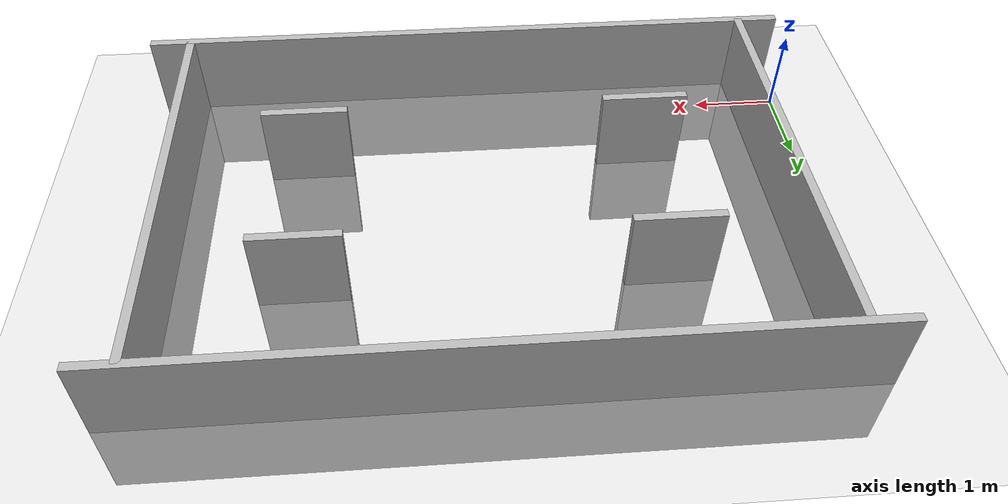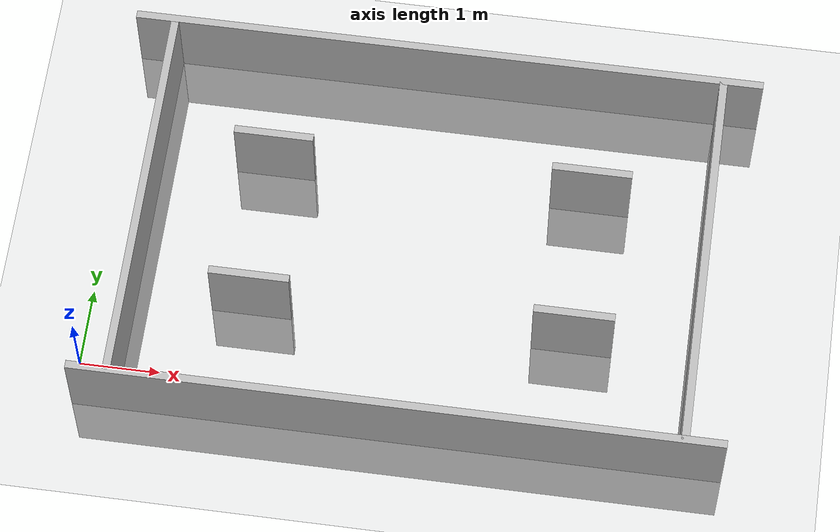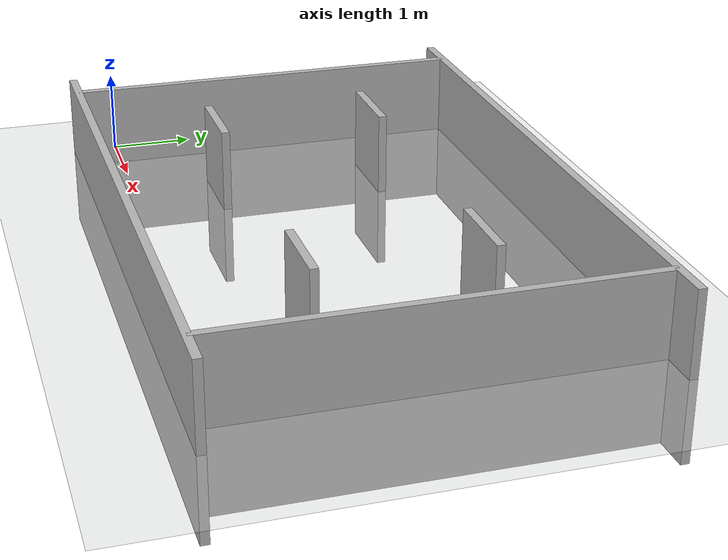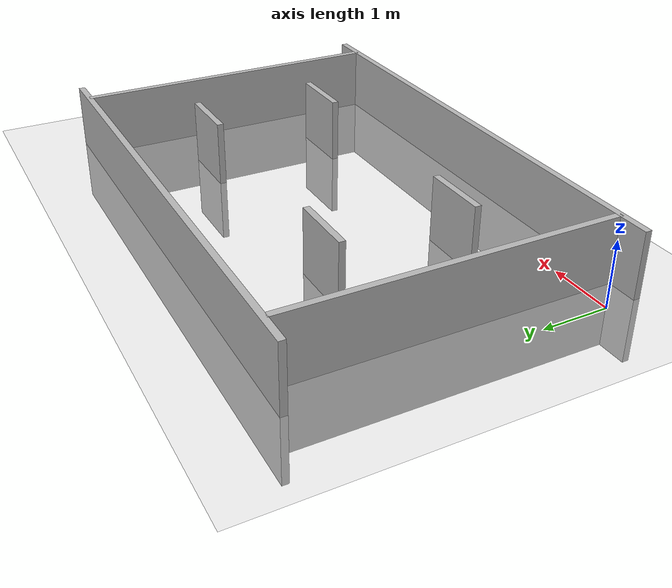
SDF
<?xml version="1.0" ?>
<sdf version="1.6">
  <world name="supermarket_world">

    <!-- Ground Plane -->
    <include>
      <uri>model://ground_plane</uri>
    </include>

    <!-- Lighting -->
    <include>
      <uri>model://sun</uri>
    </include>

    <!-- Walls -->
    <!-- North Wall -->
    <model name="north_wall">
      <static>true</static>
      <pose>4 4.5 0 0 0 0</pose> <!-- Adjust the position as needed -->
      <link name="link">
        <collision name="collision">
          <geometry>
            <box><size>8 0.1 2</size></box>
          </geometry>
        </collision>
        <visual name="visual">
          <geometry>
            <box><size>8 0.1 2</size></box>
          </geometry>
        </visual>
      </link>
    </model>

    <!-- South Wall -->
    <model name="south_wall">
      <static>true</static>
      <pose>4 -0.5 0 0 0 0</pose> <!-- Adjust the position as needed -->
      <link name="link">
        <collision name="collision">
          <geometry>
            <box><size>8 0.1 2</size></box>
          </geometry>
        </collision>
        <visual name="visual">
          <geometry>
            <box><size>8 0.1 2</size></box>
          </geometry>
        </visual>
      </link>
    </model>

    <!-- East Wall -->
    <model name="east_wall">
      <static>true</static>
      <pose>7.5 2 0 0 0 1.57</pose> <!-- Rotated 90 degrees -->
      <link name="link">
        <collision name="collision">
          <geometry>
            <box><size>5 0.1 2</size></box>
          </geometry>
        </collision>
        <visual name="visual">
          <geometry>
            <box><size>5 0.1 2</size></box>
          </geometry>
        </visual>
      </link>
    </model>

    <!-- West Wall -->
    <model name="west_wall">
      <static>true</static>
      <pose>0.5 2 0 0 0 1.57</pose> <!-- Rotated 90 degrees -->
      <link name="link">
        <collision name="collision">
          <geometry>
            <box><size>5 0.1 2</size></box>
          </geometry>
        </collision>
        <visual name="visual">
          <geometry>
            <box><size>5 0.1 2</size></box>
          </geometry>
        </visual>
      </link>
    </model>

    <!-- Shelves -->
    <!-- Adjust the positions to ensure at least 40cm wide paths -->

    <!-- First Column of Shelves -->
    <!-- Shelf 1 -->
    <model name="shelf1">
      <static>true</static>
      <pose>2 1 0 0 0 0</pose>
      <link name="link">
        <collision name="collision">
          <geometry>
            <box>
              <size>1 0.1 2</size>
            </box>
          </geometry>
        </collision>
        <visual name="visual">
          <geometry>
            <box>
              <size>1 0.1 2</size>
            </box>
          </geometry>
        </visual>
      </link>
    </model>

    <!-- Shelf 2 -->
    <model name="shelf2">
      <static>true</static>
      <pose>2 3 0 0 0 0</pose>
      <link name="link">
        <collision name="collision">
          <geometry>
            <box>
              <size>1 0.1 2</size>
            </box>
          </geometry>
        </collision>
        <visual name="visual">
          <geometry>
            <box>
              <size>1 0.1 2</size>
            </box>
          </geometry>
        </visual>
      </link>
    </model>

    <!-- Second Column of Shelves -->
    <!-- Shelf 3 -->
    <model name="shelf3">
      <static>true</static>
      <pose>6 1 0 0 0 0</pose>
      <link name="link">
        <collision name="collision">
          <geometry>
            <box>
              <size>1 0.1 2</size>
            </box>
          </geometry>
        </collision>
        <visual name="visual">
          <geometry>
            <box>
              <size>1 0.1 2</size>
            </box>
          </geometry>
        </visual>
      </link>
    </model>

    <!-- Shelf 4 -->
    <model name="shelf4">
      <static>true</static>
      <pose>6 3 0 0 0 0</pose>
      <link name="link">
        <collision name="collision">
          <geometry>
            <box>
              <size>1 0.1 2</size>
            </box>
          </geometry>
        </collision>
        <visual name="visual">
          <geometry>
            <box>
              <size>1 0.1 2</size>
            </box>
          </geometry>
        </visual>
      </link>
    </model>

  </world>
</sdf>
